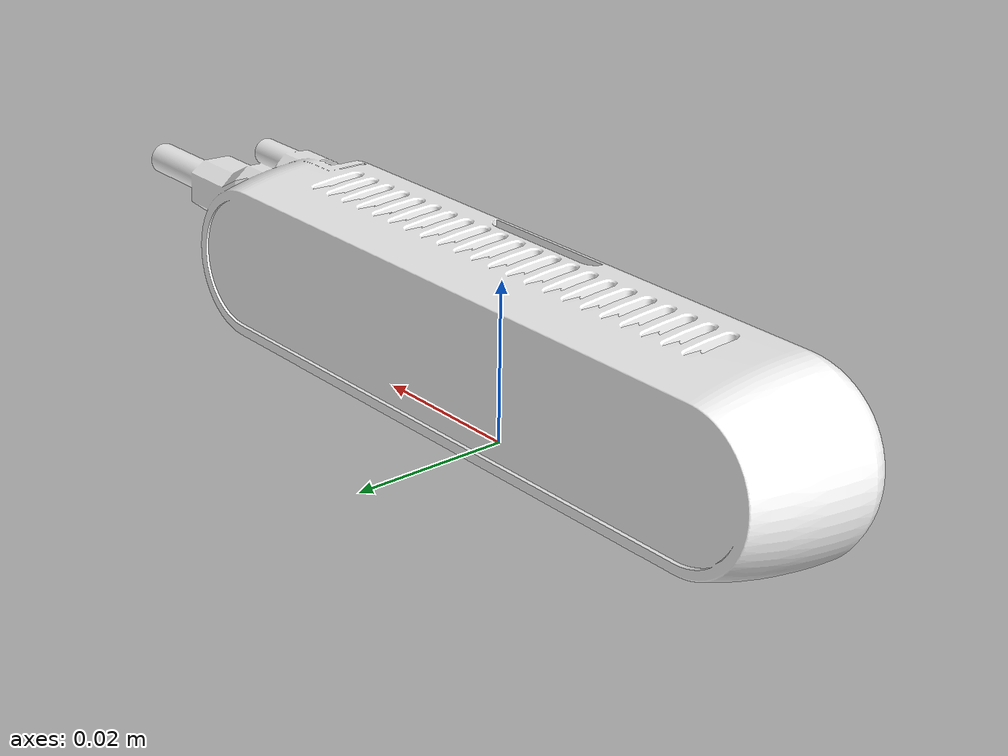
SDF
<?xml version="1.0"?>
<sdf version="1.5">
  <model name="D435i">
    <link name="link">
      <pose>0 0 0 0 0 0</pose>
      <collision name="collision">
        <geometry>
          <mesh><uri>model://D435i/meshes/D415.dae</uri></mesh>
        </geometry>
      </collision>
      <visual name="visual">
        <pose>0 0 0 0 0 3.14159</pose>
        <geometry>
          <mesh><uri>model://D435i/meshes/D415.dae</uri></mesh>
        </geometry>
      </visual>
      <sensor name="depthcam" type="depth">
        <pose>0 0 0 0 0 1.5708</pose>
        <camera>
          <horizontal_fov>1.51843645</horizontal_fov>
          <image>
            <width>640</width>
            <height>360</height>
          </image>
          <clip>
            <near>0.210</near>
            <far>9.0</far>
          </clip>
        </camera>
        <plugin name="d435i_depth_camera_sensor"
          filename="../gazebo/build/plugins/libd435i_depth_plugin.so" />
        <always_on>1</always_on>
        <update_rate>30</update_rate>
        <visualize>true</visualize>
      </sensor>
      <sensor name="colorcam" type="camera">
        <pose>0 0 0 0 0 1.5708</pose>
        <camera>
          <horizontal_fov>1.2112585</horizontal_fov>
          <image>
            <width>640</width>
            <height>360</height>
          </image>
        </camera>
        <plugin name="d435i_color_camera_sensor"
          filename="../gazebo/build/plugins/libd435i_color_plugin.so" />
        <always_on>1</always_on>
        <update_rate>30</update_rate>
        <visualize>true</visualize>
      </sensor>
    </link>
  </model>
</sdf>
